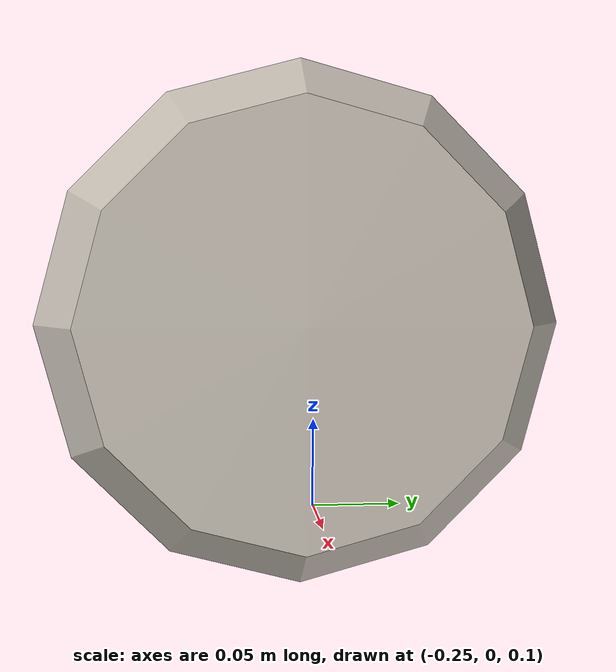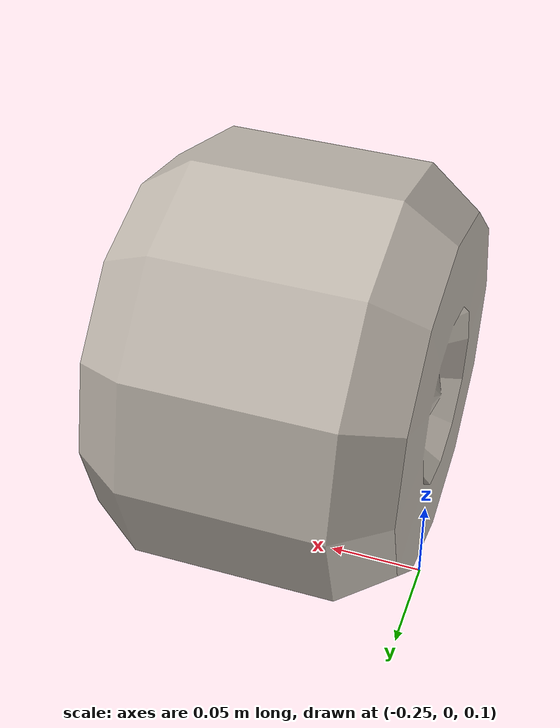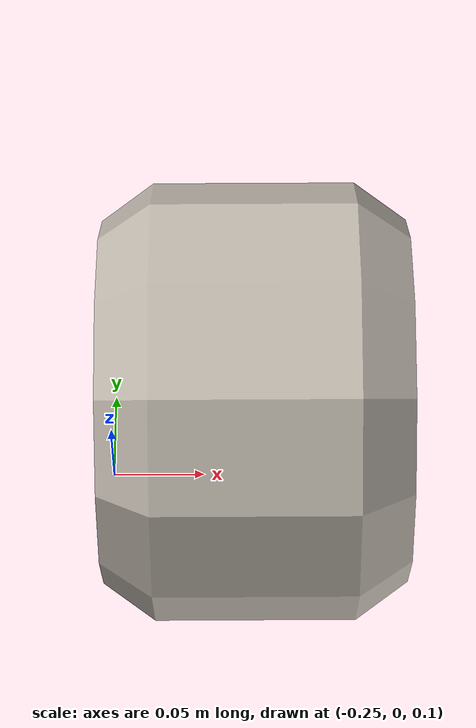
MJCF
<mujoco model="spacetruck_large_wheel_front_right">
  <default>
    <default class="visual">
      <geom group="2" type="mesh" contype="0" conaffinity="0" />
    </default>
    <default class="collision">
      <geom group="3" type="mesh" />
    </default>
  </default>
  <asset>
    <texture type="2d" name="spacetruck_large_wheel_front_right_spacebits_texture" file="spacebits_texture.png" />
    <material name="spacetruck_large_wheel_front_right_spacebits_texture" texture="spacetruck_large_wheel_front_right_spacebits_texture" specular="0.50196078" shininess="0.15999998099999999" />
    <mesh file="spacetruck_large_wheel_front_right.obj" name="spacetruck_large_wheel_front_right_spacetruck_large_wheel_front_right" />
  </asset>
  <worldbody>
    <body name="spacetruck_large_wheel_front_right">
      <geom material="spacetruck_large_wheel_front_right_spacebits_texture" mesh="spacetruck_large_wheel_front_right_spacetruck_large_wheel_front_right" class="visual" />
      <geom mesh="spacetruck_large_wheel_front_right_spacetruck_large_wheel_front_right" class="collision" />
    </body>
  </worldbody>
</mujoco>
